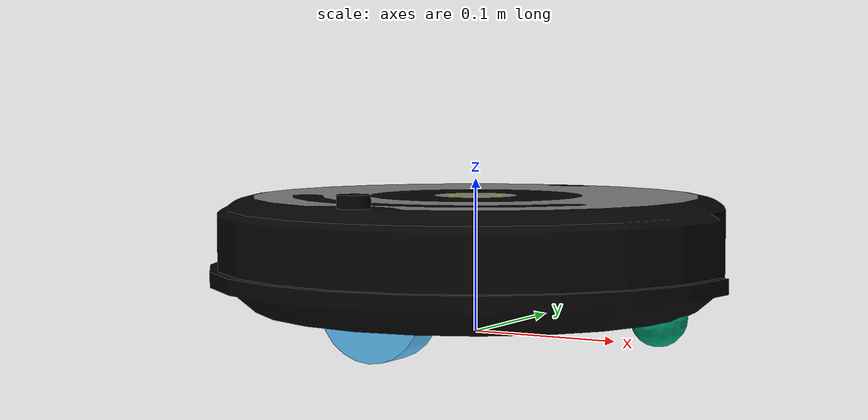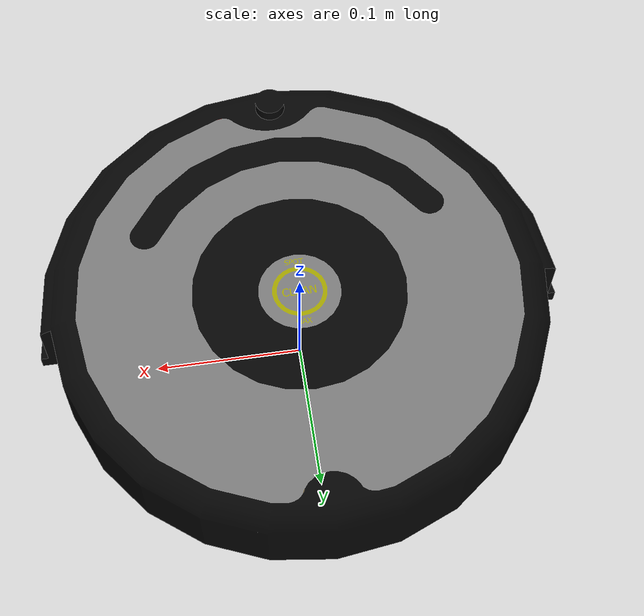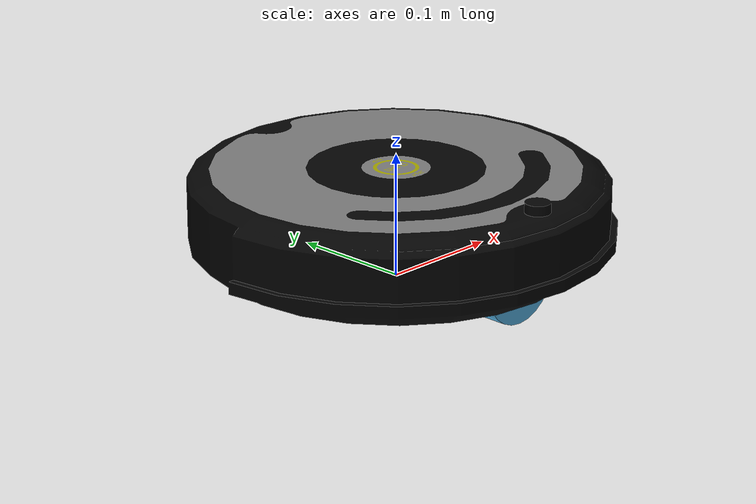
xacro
<?xml version="1.0" ?>
<robot name="create_2" xmlns:xacro="http://ros.org/wiki/xacro">
  <xacro:include filename="$(find ca_description)/urdf/create_base.urdf.xacro" />
  <xacro:include filename="$(find ca_description)/urdf/sensor_platform.urdf.xacro" />

  <xacro:create_base wheel_separation="0.235" base_diameter="0.3485">
    <mesh filename="package://ca_description/meshes/create_2.dae" />
  </xacro:create_base>

  <xacro:create_sensor_platform>
  </xacro:create_sensor_platform>
</robot>

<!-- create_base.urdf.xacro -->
<robot xmlns:xacro="http://ros.org/wiki/xacro">

  <xacro:macro name="create_base" params="diffdrive_update_rate:=40 wheel_separation wheel_radius:=0.036 wheel_width:=0.024 wheel_torque:=0.5 wheel_accel:=0.5 mass_kg:=3.5 base_diameter *mesh visualize:=false">

    <xacro:include filename="$(find ca_description)/urdf/create_base_gazebo.urdf.xacro"/>
    <xacro:include filename="$(find ca_description)/urdf/create_caster_wheel.xacro"/>
    <xacro:include filename="$(find ca_description)/urdf/create_wheel.xacro"/>
    <xacro:include filename="$(find ca_description)/urdf/sensors/imu_sensor.xacro"/>
    <xacro:include filename="$(find ca_description)/urdf/sensors/wall_sensor.xacro"/>
    <xacro:include filename="$(find ca_description)/urdf/sensors/cliff_sensors.xacro"/>

    <link name="base_footprint">
    <visual>
      <origin xyz="0 0 0" rpy="0 0 0" />
      <geometry>
        <box size="0.001 0.001 0.001" />
      </geometry>
      <material name="Green" />
    </visual>

    <collision>
      <origin xyz="0 0 0.017" rpy="0 0 0" />
      <geometry>
        <box size="0.001 0.001 0.001" />
      </geometry>
    </collision>
    </link>

    <link name="base_link">
      <inertial>
        <mass value="2" />
        <origin xyz="0 0 0.0" />
        <inertia ixx="0.01" ixy="0.0" ixz="0.0" iyy="0.01" iyz="0.0" izz="0.5" />
      </inertial>

      <visual>
        <origin xyz=" 0 0 0.0308" rpy="0 0 0" />
        <geometry>
          <xacro:insert_block name="mesh" />
        </geometry>
      </visual>

      <collision>
        <origin xyz="0.0 0.0 0.0308" rpy="0 0 0" />
        <geometry>
          <cylinder length="0.0611632" radius="0.16495" />
        </geometry>
      </collision>
    </link>

    <joint name="base_footprint_joint" type="fixed">
      <origin xyz="0 0 0.017" rpy="0 0 0" />
      <parent link="base_footprint" />
      <child link="base_link" />
    </joint>

    <xacro:wall_sensor visualize="${visualize}"/>
    <xacro:cliff_sensors visualize="${visualize}"/>
    <xacro:imu_sensor/>

    <xacro:create_wheel prefix="left" y_offset="${wheel_separation / 2}" wheel_radius="${wheel_radius}" wheel_width="${wheel_width}"/>
    <xacro:create_wheel prefix="right" y_offset="${wheel_separation / -2}" wheel_radius="${wheel_radius}" wheel_width="${wheel_width}"/>
    <xacro:caster_wheel/>

    <!-- Simulation sensors -->
    <xacro:sim_create_base/>
  </xacro:macro>
</robot>

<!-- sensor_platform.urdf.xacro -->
<robot xmlns:xacro="http://ros.org/wiki/xacro">

  <xacro:macro name="create_sensor_platform">

    <xacro:macro name="create_r200_camera_link" params="camera x_offset y_offset z_offset r p y inter_x inter_y inter_z ">
      <link name="${camera}_link"/>
      <link name="${camera}_ir2_frame"/>
      <link name="${camera}_ir_frame"/>
      <link name="${camera}_depth_frame"/>
      <link name="${camera}_rgb_frame"/>
      <link name="${camera}_ir2_optical_frame"/>
      <link name="${camera}_ir_optical_frame"/>
      <link name="${camera}_depth_optical_frame"/>
      <link name="${camera}_rgb_optical_frame"/>

      <joint name="${camera}_offset" type="fixed">
	<origin xyz="${x_offset} ${y_offset} ${z_offset}" rpy="${r} ${p} ${y}"/>
	<parent link="base_link" />
	<child link="${camera}_link"/>
      </joint>

      <joint name="${camera}_rgb_offset" type="fixed">
	<origin xyz="0 0 0" rpy="0 0 0"/>
	<parent link="${camera}_link" />
	<child link="${camera}_rgb_frame"/>
      </joint>

      <joint name="${camera}_rgb_optical_offset" type="fixed">
	<origin xyz="0 0 0" rpy="-1.5707963 0 -1.5707963"/>
	<parent link="${camera}_rgb_frame" />
	<child link="${camera}_rgb_optical_frame"/>
      </joint>

      <joint name="${camera}_depth_offset" type="fixed">
	<origin xyz="${inter_x} ${inter_y} ${inter_z}" rpy="0 0 0"/>
	<parent link="${camera}_link" />
	<child link="${camera}_depth_frame"/>
      </joint>

      <joint name="${camera}_depth_optical_offset" type="fixed">
	<origin xyz="0 0 0" rpy="-1.5707963 0 -1.5707963"/>
	<parent link="${camera}_depth_frame" />
	<child link="${camera}_depth_optical_frame"/>
      </joint>

      <joint name="${camera}_ir_offset" type="fixed">
	<origin xyz="${inter_x} ${inter_y} ${inter_z}" rpy="0 0 0"/>
	<parent link="${camera}_link" />
	<child link="${camera}_ir_frame"/>
      </joint>

      <joint name="${camera}_ir_optical_offset" type="fixed">
	<origin xyz="0 0 0" rpy="-1.5707963 0 -1.5707963"/>
	<parent link="${camera}_ir_frame" />
	<child link="${camera}_ir_optical_frame"/>
      </joint>

      <joint name="${camera}_ir2_offset" type="fixed">
	<origin xyz="${inter_x} ${inter_y} ${inter_z}" rpy="0 0 0"/>
	<parent link="${camera}_link" />
	<child link="${camera}_ir2_frame"/>
      </joint>

      <joint name="${camera}_ir2_optical_frame" type="fixed">
	<origin xyz="0 0 0" rpy="-1.5707963 0 -1.5707963"/>
	<parent link="${camera}_ir2_frame"/>
	<child link="${camera}_ir2_optical_frame"/>
      </joint>

    </xacro:macro>

    <xacro:macro name="create_zr300_camera_link" params="camera x_offset y_offset z_offset r p y inter_x inter_y inter_z fish_x fish_y fish_z">
      <link name="${camera}_link"/>
      <link name="${camera}_ir2_frame"/>
      <link name="${camera}_ir_frame"/>
      <link name="${camera}_depth_frame"/>
      <link name="${camera}_rgb_frame"/>
      <link name="${camera}_fisheye_frame"/>
      <link name="${camera}_imu_frame"/>
      <link name="${camera}_ir2_optical_frame"/>
      <link name="${camera}_ir_optical_frame"/>
      <link name="${camera}_depth_optical_frame"/>
      <link name="${camera}_rgb_optical_frame"/>
      <link name="${camera}_fisheye_optical_frame"/>
      <link name="${camera}_imu_optical_frame"/>

      <joint name="${camera}_offset" type="fixed">
	<origin xyz="${x_offset} ${y_offset} ${z_offset}" rpy="${r} ${p} ${y}"/>
	<parent link="base_link" />
	<child link="${camera}_link"/>
      </joint>

      <joint name="${camera}_rgb_offset" type="fixed">
	<origin xyz="0 0 0" rpy="0 0 0"/>
	<parent link="${camera}_link" />
	<child link="${camera}_rgb_frame"/>
      </joint>

      <joint name="${camera}_rgb_optical_offset" type="fixed">
	<origin xyz="0 0 0" rpy="-1.5707963 1.570793 0"/>
	<parent link="${camera}_rgb_frame" />
	<child link="${camera}_rgb_optical_frame"/>
      </joint>

      <joint name="${camera}_depth_offset" type="fixed">
	<origin xyz="${inter_x} ${inter_y} ${inter_z}" rpy="0 0 0"/>
	<parent link="${camera}_link" />
	<child link="${camera}_depth_frame"/>
      </joint>

      <joint name="${camera}_depth_optical_offset" type="fixed">
	<origin xyz="0 0 0" rpy="-1.5707963 1.5707963 0"/>
	<parent link="${camera}_depth_frame" />
	<child link="${camera}_depth_optical_frame"/>
      </joint>

      <joint name="${camera}_ir_offset" type="fixed">
	<origin xyz="${inter_x} ${inter_y} ${inter_z}" rpy="0 0 0"/>
	<parent link="${camera}_link" />
	<child link="${camera}_ir_frame"/>
      </joint>

      <joint name="${camera}_ir_optical_offset" type="fixed">
	<origin xyz="0 0 0" rpy="-1.5707963 1.5707963 0"/>
	<parent link="${camera}_ir_frame" />
	<child link="${camera}_ir_optical_frame"/>
      </joint>

      <joint name="${camera}_ir2_offset" type="fixed">
	<origin xyz="${inter_x} ${inter_y} ${inter_z}" rpy="0 0 0"/>
	<parent link="${camera}_link" />
	<child link="${camera}_ir2_frame"/>
      </joint>

      <joint name="${camera}_ir2_optical_frame" type="fixed">
	<origin xyz="0 0 0" rpy="-1.5707963 1.5707963 0"/>
	<parent link="${camera}_ir2_frame"/>
	<child link="${camera}_ir2_optical_frame"/>
      </joint>

      <joint name="${camera}_imu_offset" type="fixed">
	<origin xyz="0 0.07 0" rpy="0 0 0"/>
	<parent link="${camera}_link" />
	<child link="${camera}_imu_frame"/>
      </joint>

      <joint name="${camera}_imu_optical_frame" type="fixed">
	<origin xyz="0 0 0" rpy="-1.5707963 1.5707963 0"/>
	<parent link="${camera}_imu_frame"/>
	<child link="${camera}_imu_optical_frame"/>
      </joint>

      <joint name="${camera}_fisheye_offset" type="fixed">
	<origin xyz="${fish_x} ${fish_y} ${fish_z}" rpy="0 0 0"/>
	<parent link="${camera}_link" />
	<child link="${camera}_fisheye_frame"/>
      </joint>

      <joint name="${camera}_fisheye_optical_frame" type="fixed">
	<origin xyz="0 0 0" rpy="-1.5707963 1.5707963 0"/>
	<parent link="${camera}_fisheye_frame"/>
	<child link="${camera}_fisheye_optical_frame"/>
      </joint>
    </xacro:macro>

    <xacro:create_r200_camera_link camera="camera1" x_offset="0.09838" y_offset="0.07093" z_offset="0.12916" r="0" p="0" y="0.61086" inter_x="-0.00060116" inter_y="0.05953734" inter_z="0.00035836"/>
    <xacro:create_r200_camera_link camera="camera2" x_offset="0.09838" y_offset="-0.07093" z_offset="0.12916" r="0" p="0" y="-0.61086" inter_x="-0.00047456" inter_y="0.05890761" inter_z="-0.00028228"/>
    <xacro:create_r200_camera_link camera="camera3" x_offset="-0.12606" y_offset="0" z_offset="0.12916" r="0" p="0" y="3.14159" inter_x="-0.00029596" inter_y="0.05857863" inter_z="0.00001785"/>
    <xacro:create_zr300_camera_link camera="camera4" x_offset="0.1353" y_offset="0" z_offset="0.21333" r="0" p="0" y="0" inter_x="-0.00229075" inter_y="0.05960519" inter_z="-0.00043123" fish_x="-0.00186405" fish_y="0.08935372" fish_z="-0.00118203"/>

  </xacro:macro>

</robot>

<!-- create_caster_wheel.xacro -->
<robot xmlns:xacro="http://ros.org/wiki/xacro">

<xacro:macro name="caster_wheel">

  <xacro:include filename="$(find ca_description)/urdf/common_properties.xacro"/>

  <xacro:property name="link_name" value="caster_wheel_link"/>
  <xacro:property name="parent_link" value="base_link"/>

  <xacro:property name="x" value="0.13"/>
  <xacro:property name="y" value="0"/>
  <xacro:property name="z" value="0"/>
  <xacro:property name="R" value="0"/>
  <xacro:property name="P" value="${pi/2}"/>
  <xacro:property name="Y" value="${pi/2}"/>

  <xacro:property name="radius" value="0.018"/>

  <link name="${link_name}">
    <xacro:dummy_inertia/>

    <visual>
      <origin xyz="0 0 0" rpy="${R} ${P} ${Y}" />
      <geometry>
        <sphere radius="${radius}" />
      </geometry>
    </visual>

    <collision>
      <origin xyz="0 0 0" rpy="${R} ${P} ${Y}" />
      <geometry>
        <sphere radius="${radius}" />
      </geometry>
    </collision>
  </link>

  <!-- fixed because there's no transmission -->
  <joint name="front_castor_joint" type="fixed">
    <origin xyz="${x} ${y} ${z}" rpy="0 0 0" />
    <parent link="${parent_link}" />
    <child link="${link_name}" />
    <axis xyz="0 1 0" />
  </joint>

</xacro:macro>

</robot>

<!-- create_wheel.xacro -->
<robot xmlns:xacro="http://ros.org/wiki/xacro">

<xacro:macro name="create_wheel" params="prefix y_offset wheel_radius wheel_width">

  <xacro:include filename="$(find ca_description)/urdf/common_properties.xacro"/>

  <xacro:property name="x" value="0"/>
  <xacro:property name="y" value="${y_offset}"/>
  <xacro:property name="z" value="0.015"/>
  <xacro:property name="R" value="0"/>
  <xacro:property name="P" value="${pi/2}"/>
  <xacro:property name="Y" value="${pi/2}"/>

  <link name="${prefix}_wheel_link">
    <xacro:dummy_inertia/>

    <visual>
      <origin xyz="0 0 0" rpy="${R} ${P} ${Y}" />
      <geometry>
        <cylinder radius="${wheel_radius}" length="${wheel_width}" />
      </geometry>
    </visual>

    <collision>
      <origin xyz="0 0 0" rpy="${R} ${P} ${Y}" />
      <geometry>
        <cylinder radius="${wheel_radius}" length="${wheel_width}" />
      </geometry>
    </collision>
  </link>

 <joint name="${prefix}_wheel_joint" type="continuous">
    <origin xyz="${x} ${y} ${z}" rpy="0 0 0" />
    <parent link="base_link" />
    <child link="${prefix}_wheel_link" />
    <axis xyz="0 1 0" />
  </joint>
</xacro:macro>

</robot>

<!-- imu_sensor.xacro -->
<robot xmlns:xacro="http://ros.org/wiki/xacro">

<xacro:macro name="imu_sensor">

  <xacro:include filename="$(find ca_description)/urdf/common_properties.xacro"/>
  <xacro:include filename="$(find ca_description)/urdf/sensors/imu_sensor_gazebo.xacro"/>

  <xacro:property name="parent_link" value="base_link"/>
  <xacro:property name="link_name" value="gyro_link"/>

  <xacro:property name="x" value="0"/>
  <xacro:property name="y" value="0"/>
  <xacro:property name="z" value="0.04"/>
  <xacro:property name="R" value="0"/>
  <xacro:property name="P" value="0"/>
  <xacro:property name="Y" value="0"/>

  <joint name="gyro_joint" type="fixed">
    <axis xyz="0 1 0" />
    <origin xyz="${x} ${y} ${z}" rpy="${R} ${P} ${Y}"/>
    <parent link="${parent_link}" />
    <child link="${link_name}" />
  </joint>

  <link name="${link_name}">
    <xacro:dummy_inertia/>
  </link>

  <xacro:sim_imu/>

</xacro:macro>

</robot>

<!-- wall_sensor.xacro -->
<robot xmlns:xacro="http://ros.org/wiki/xacro">

<xacro:macro name="wall_sensor" params="visualize:=false">

  <xacro:include filename="$(find ca_description)/urdf/common_properties.xacro"/>
  <xacro:include filename="$(find ca_description)/urdf/sensors/wall_sensor_gazebo.xacro"/>

  <xacro:property name="x" value="0.09"/>
  <xacro:property name="y" value="-0.120"/>
  <xacro:property name="z" value="0.042"/>
  <xacro:property name="R" value="0"/>
  <xacro:property name="P" value="0"/>
  <xacro:property name="Y" value="-1.0"/>

  <xacro:property name="parent_link" value="base_link"/>

  <joint name="base_wall_sensor_joint" type="fixed">
    <origin xyz="${x} ${y} ${z}" rpy="${R} ${P} ${Y}" />
    <parent link="${parent_link}" />
    <child link="wall_sensor_link" />
  </joint>

  <link name="wall_sensor_link">
    <xacro:dummy_inertia/>
  </link>

  <xacro:sim_create_wall_sensor visualize="${visualize}"/>

</xacro:macro>

</robot>

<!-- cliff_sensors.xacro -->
<robot xmlns:xacro="http://ros.org/wiki/xacro">

<xacro:macro name="cliff_sensors" params="visualize:=false">

  <xacro:include filename="$(find ca_description)/urdf/common_properties.xacro"/>
  <xacro:include filename="$(find ca_description)/urdf/sensors/cliff_sensors_gazebo.xacro"/>

  <xacro:property name="parent_link" value="base_link"/>

  <xacro:property name="name_side_left" value="side_left"/>
  <xacro:property name="name_side_right" value="side_right"/>
  <xacro:property name="name_front_left" value="front_left"/>
  <xacro:property name="name_front_right" value="front_right"/>

  <joint name="${name_side_left}_cliff_sensor_joint" type="fixed">
    <origin xyz="0.07 0.14 0.01" rpy="0 ${pi/2} 0" />
    <parent link="${parent_link}" />
    <child link="${name_side_left}_cliff_sensor_link" />
  </joint>

  <joint name="${name_side_right}_cliff_sensor_joint" type="fixed">
    <origin xyz="0.07 -0.14 0.01" rpy="0 ${pi/2} 0" />
    <parent link="${parent_link}" />
    <child link="${name_side_right}_cliff_sensor_link" />
  </joint>

  <joint name="${name_front_left}_front_cliff_sensor_joint" type="fixed">
    <origin xyz="0.15 0.04 0.01" rpy="0 ${pi/2} 0" />
    <parent link="${parent_link}" />
    <child link="${name_front_left}_cliff_sensor_link" />
  </joint>

  <joint name="${name_front_right}_cliff_sensor_joint" type="fixed">
    <origin xyz="0.15 -0.04 0.01" rpy="0 ${pi/2} 0" />
    <parent link="${parent_link}" />
    <child link="${name_front_right}_cliff_sensor_link" />
  </joint>

  <link name="${name_side_left}_cliff_sensor_link">
    <xacro:dummy_inertia/>
  </link>

  <link name="${name_side_right}_cliff_sensor_link">
    <xacro:dummy_inertia/>
  </link>

  <link name="${name_front_left}_cliff_sensor_link">
    <xacro:dummy_inertia/>
  </link>

  <link name="${name_front_right}_cliff_sensor_link">
    <xacro:dummy_inertia/>
  </link>

  <xacro:sim_create_cliff_sensors visualize="${visualize}"/>

</xacro:macro>

</robot>

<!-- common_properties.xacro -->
<robot xmlns:xacro="http://ros.org/wiki/xacro">

<xacro:macro name="dummy_inertia">
  <inertial>
    <mass value="0.01" />
    <origin xyz="0 0 0" />
    <inertia ixx="0.001" ixy="0.0" ixz="0.0" iyy="0.001" iyz="0.0" izz="0.001" />
  </inertial>
</xacro:macro>

</robot>
